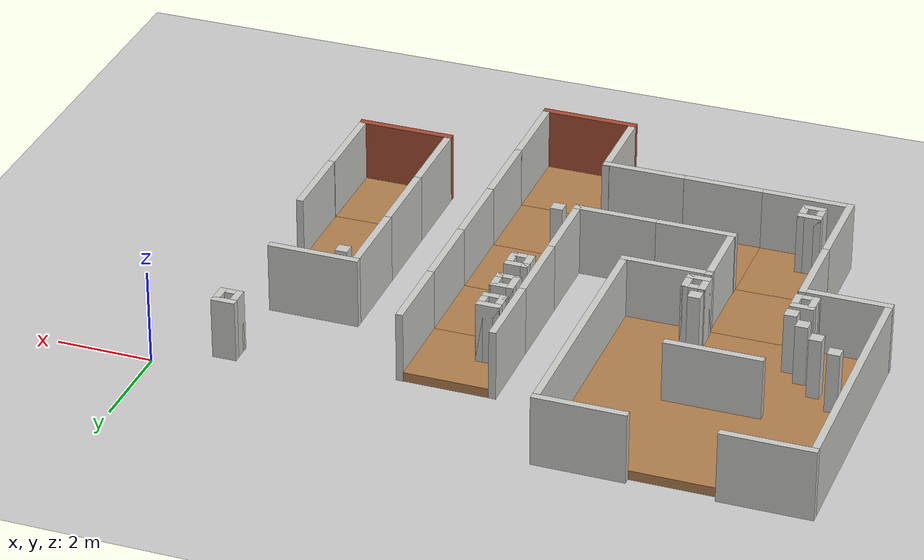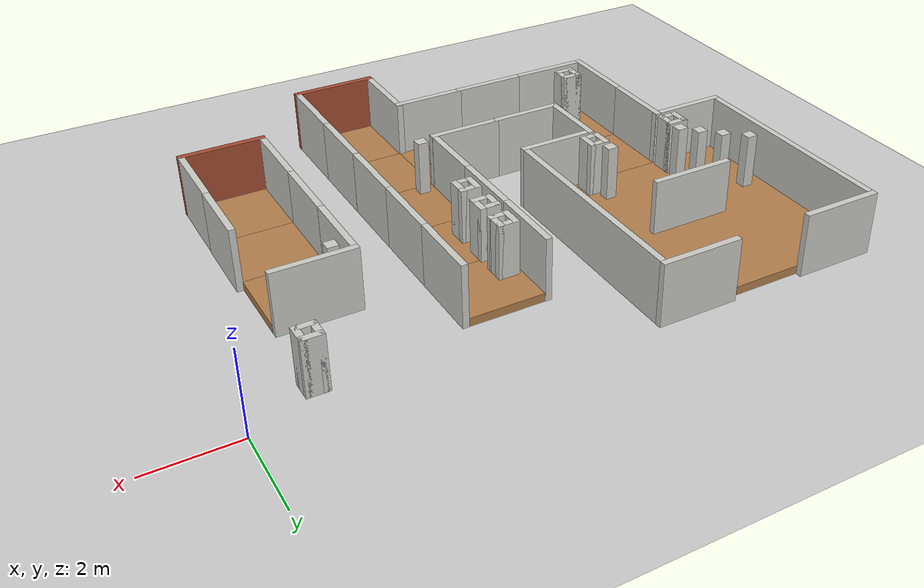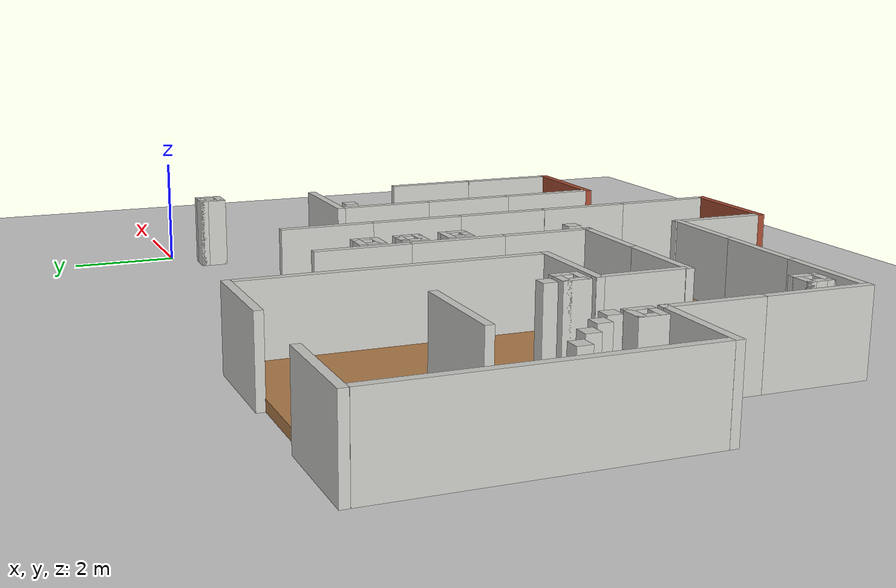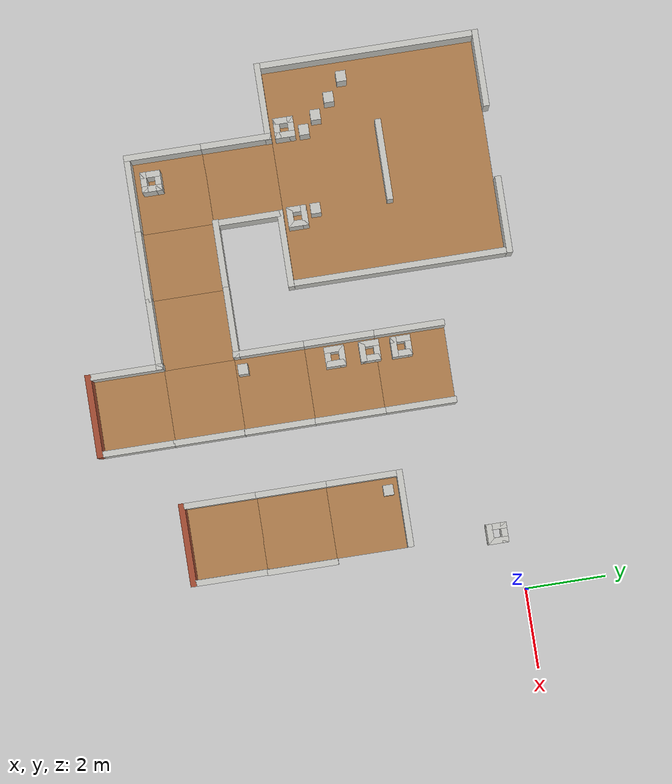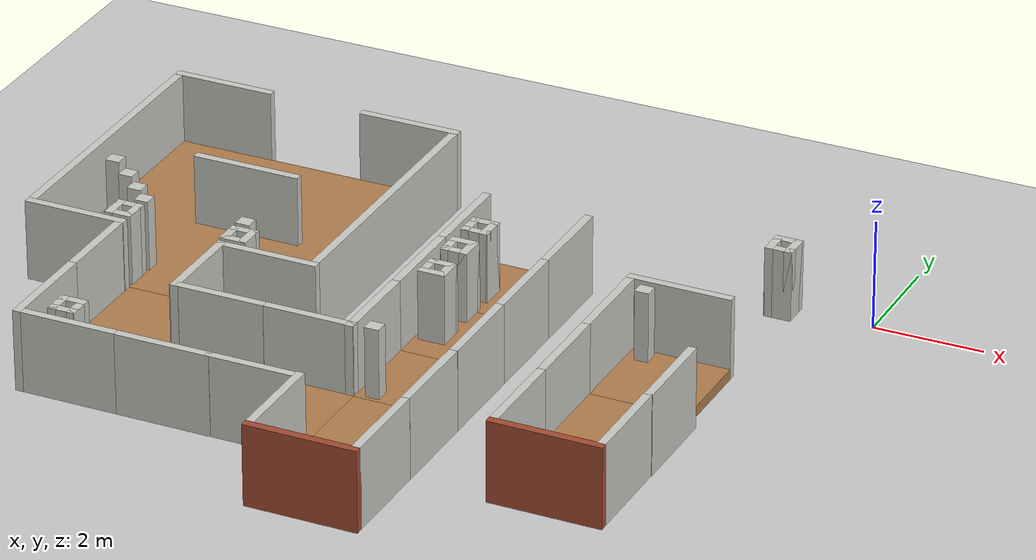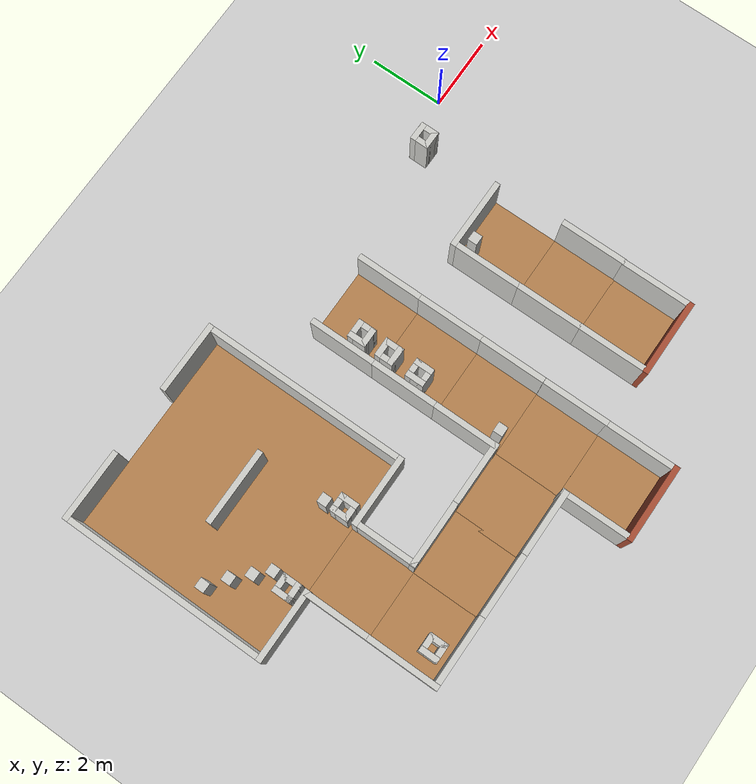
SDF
<sdf version="1.6">
 <world name="default">
  <model name="ground_plane">
   <static>1</static>
   <link name="link">
    <collision name="collision">
     <geometry><plane><normal>0 0 1</normal><size>100 100</size></plane></geometry>
     <surface><friction><ode><mu>100</mu><mu2>50</mu2></ode></friction></surface>
    </collision>
    <visual name="visual">
     <cast_shadows>0</cast_shadows>
     <geometry><plane><normal>0 0 1</normal><size>100 100</size></plane></geometry>
     <material>
      <script><uri>file://media/materials/scripts/gazebo.material</uri><name>Gazebo/Grey</name></script>
     </material>
    </visual>
   </link>
  </model>
  <model name="nerve_end">
   <pose>-2.33142 -7.13266 0 0 0 -3.14159</pose>
   <link name="Wall_0">
    <collision name="Wall_0_Collision">
     <geometry><box><size>1.76 1.75 0.2</size></box></geometry>
     <pose>0 0 0.1 0 -0 0</pose>
    </collision>
    <visual name="Wall_0_Visual">
     <pose>0 0 0.1 0 -0 0</pose>
     <geometry><box><size>1.76 1.75 0.2</size></box></geometry>
     <material>
      <script><uri>file://media/materials/scripts/gazebo.material</uri><name>Gazebo/Wood</name></script>
      <ambient>1 0.764706 0.305882 1</ambient>
     </material>
    </visual>
    <pose>-0.009 -0.064 0 0 -0 0</pose>
   </link>
   <link name="Wall_2">
    <collision name="Wall_2_Collision">
     <geometry><box><size>1.8 0.15 1.5</size></box></geometry>
     <pose>0 0 0.75 0 -0 0</pose>
    </collision>
    <visual name="Wall_2_Visual">
     <pose>0 0 0.75 0 -0 0</pose>
     <geometry><box><size>1.8 0.15 1.5</size></box></geometry>
     <material>
      <script><uri>file://media/materials/scripts/gazebo.material</uri><name>Gazebo/CeilingTiled</name></script>
      <ambient>1 0.764706 0.305882 1</ambient>
     </material>
    </visual>
    <pose>-0.95 -0.065 0 0 0 -1.5708</pose>
   </link>
   <link name="Wall_4">
    <collision name="Wall_4_Collision">
     <geometry><box><size>1.8 0.15 1.5</size></box></geometry>
     <pose>0 0 0.75 0 -0 0</pose>
    </collision>
    <visual name="Wall_4_Visual">
     <pose>0 0 0.75 0 -0 0</pose>
     <geometry><box><size>1.8 0.15 1.5</size></box></geometry>
     <material>
      <script><uri>file://media/materials/scripts/gazebo.material</uri><name>Gazebo/CeilingTiled</name></script>
      <ambient>1 0.764706 0.305882 1</ambient>
     </material>
    </visual>
    <pose>0.95 -0.065 0 0 0 -1.5708</pose>
   </link>
   <link name="Wall_6">
    <collision name="Wall_6_Collision">
     <geometry><box><size>2.05 0.15 1.5</size></box></geometry>
     <pose>0 0 0.75 0 -0 0</pose>
    </collision>
    <visual name="Wall_6_Visual">
     <pose>0 0 0.75 0 -0 0</pose>
     <geometry><box><size>2.05 0.15 1.5</size></box></geometry>
     <material>
      <script><uri>file://media/materials/scripts/gazebo.material</uri><name>Gazebo/Bricks</name></script>
      <ambient>0.996078 0.47451 0.0196078 1</ambient>
     </material>
    </visual>
    <pose>0 0.89 0 0 -0 0</pose>
   </link>
   <static>1</static>
  </model>
  <model name="nerve_straight_4">
   <pose>-2.32642 -5.32807 0 0 -0 0</pose>
   <link name="Wall_0">
    <collision name="Wall_0_Collision">
     <geometry><box><size>1.76 1.75 0.2</size></box></geometry>
     <pose>0 0 0.1 0 -0 0</pose>
    </collision>
    <visual name="Wall_0_Visual">
     <pose>0 0 0.1 0 -0 0</pose>
     <geometry><box><size>1.76 1.75 0.2</size></box></geometry>
     <material>
      <script><uri>file://media/materials/scripts/gazebo.material</uri><name>Gazebo/Wood</name></script>
      <ambient>1 0.764706 0.305882 1</ambient>
     </material>
    </visual>
    <pose>0.005 -0.002 0 0 -0 3.14159</pose>
   </link>
   <link name="Wall_2">
    <collision name="Wall_2_Collision">
     <geometry><box><size>1.75 0.15 1.5</size></box></geometry>
     <pose>0 0 0.75 0 -0 0</pose>
    </collision>
    <visual name="Wall_2_Visual">
     <pose>0 0 0.75 0 -0 0</pose>
     <geometry><box><size>1.75 0.15 1.5</size></box></geometry>
     <material>
      <script><uri>file://media/materials/scripts/gazebo.material</uri><name>Gazebo/CeilingTiled</name></script>
      <ambient>1 0.764706 0.305882 1</ambient>
     </material>
    </visual>
    <pose>-0.955 0.002 0 0 0 -1.5708</pose>
   </link>
   <link name="Wall_4">
    <collision name="Wall_4_Collision">
     <geometry><box><size>1.75 0.15 1.5</size></box></geometry>
     <pose>0 0 0.75 0 -0 0</pose>
    </collision>
    <visual name="Wall_4_Visual">
     <pose>0 0 0.75 0 -0 0</pose>
     <geometry><box><size>1.75 0.15 1.5</size></box></geometry>
     <material>
      <script><uri>file://media/materials/scripts/gazebo.material</uri><name>Gazebo/CeilingTiled</name></script>
      <ambient>1 0.764706 0.305882 1</ambient>
     </material>
    </visual>
    <pose>0.955 0.002 0 0 0 -1.5708</pose>
   </link>
   <static>1</static>
  </model>
  <model name="nerve_corner_4">
   <pose>-2.40033 -3.51919 0 0 -0 0</pose>
   <link name="Wall_0">
    <collision name="Wall_0_Collision">
     <geometry><box><size>1.76 1.75 0.2</size></box></geometry>
     <pose>0 0 0.1 0 -0 0</pose>
    </collision>
    <visual name="Wall_0_Visual">
     <pose>0 0 0.1 0 -0 0</pose>
     <geometry><box><size>1.76 1.75 0.2</size></box></geometry>
     <material>
      <script><uri>file://media/materials/scripts/gazebo.material</uri><name>Gazebo/Wood</name></script>
      <ambient>1 0.764706 0.305882 1</ambient>
     </material>
    </visual>
    <pose>0.077507 -0.077007 0 0 -0 3.14159</pose>
   </link>
   <link name="Wall_2">
    <collision name="Wall_2_Collision">
     <geometry><box><size>1.75 0.15 1.5</size></box></geometry>
     <pose>0 0 0.75 0 -0 0</pose>
    </collision>
    <visual name="Wall_2_Visual">
     <pose>0 0 0.75 0 -0 0</pose>
     <geometry><box><size>1.75 0.15 1.5</size></box></geometry>
     <material>
      <script><uri>file://media/materials/scripts/gazebo.material</uri><name>Gazebo/CeilingTiled</name></script>
      <ambient>1 0.764706 0.305882 1</ambient>
     </material>
    </visual>
    <pose>-0.882493 -0.073007 0 0 0 -1.5708</pose>
   </link>
   <link name="Wall_4">
    <collision name="Wall_4_Collision">
     <geometry><box><size>1.91042 0.15 1.5</size></box></geometry>
     <pose>0 0 0.75 0 -0 0</pose>
    </collision>
    <visual name="Wall_4_Visual">
     <pose>0 0 0.75 0 -0 0</pose>
     <geometry><box><size>1.91042 0.15 1.5</size></box></geometry>
     <material>
      <script><uri>file://media/materials/scripts/gazebo.material</uri><name>Gazebo/CeilingTiled</name></script>
      <ambient>1 0.764706 0.305882 1</ambient>
     </material>
    </visual>
    <pose>-0.002284 0.876825 0 0 -0 3.1414</pose>
   </link>
   <static>1</static>
  </model>
  <model name="nerve_straight_10_clone">
   <pose>-5.79649 -1.8585 0 0 -0 0</pose>
   <link name="Wall_0">
    <collision name="Wall_0_Collision">
     <geometry><box><size>1.76 1.75 0.2</size></box></geometry>
     <pose>0 0 0.1 0 -0 0</pose>
    </collision>
    <visual name="Wall_0_Visual">
     <pose>0 0 0.1 0 -0 0</pose>
     <geometry><box><size>1.76 1.75 0.2</size></box></geometry>
     <material>
      <script><uri>file://media/materials/scripts/gazebo.material</uri><name>Gazebo/Wood</name></script>
      <ambient>1 0.764706 0.305882 1</ambient>
     </material>
    </visual>
    <pose>0.005 -0.002 0 0 -0 3.14159</pose>
   </link>
   <link name="Wall_2">
    <collision name="Wall_2_Collision">
     <geometry><box><size>1.75 0.15 1.5</size></box></geometry>
     <pose>0 0 0.75 0 -0 0</pose>
    </collision>
    <visual name="Wall_2_Visual">
     <pose>0 0 0.75 0 -0 0</pose>
     <geometry><box><size>1.75 0.15 1.5</size></box></geometry>
     <material>
      <script><uri>file://media/materials/scripts/gazebo.material</uri><name>Gazebo/CeilingTiled</name></script>
      <ambient>1 0.764706 0.305882 1</ambient>
     </material>
    </visual>
    <pose>-0.955 0.002 0 0 0 -1.5708</pose>
   </link>
   <link name="Wall_4">
    <collision name="Wall_4_Collision">
     <geometry><box><size>1.75 0.15 1.5</size></box></geometry>
     <pose>0 0 0.75 0 -0 0</pose>
    </collision>
    <visual name="Wall_4_Visual">
     <pose>0 0 0.75 0 -0 0</pose>
     <geometry><box><size>1.75 0.15 1.5</size></box></geometry>
     <material>
      <script><uri>file://media/materials/scripts/gazebo.material</uri><name>Gazebo/CeilingTiled</name></script>
      <ambient>1 0.764706 0.305882 1</ambient>
     </material>
    </visual>
    <pose>0.955 0.002 0 0 0 -1.5708</pose>
   </link>
   <static>1</static>
  </model>
  <model name="nerve_straight_10_clone_0">
   <pose>-5.79649 -3.60725 0 0 -0 0</pose>
   <link name="Wall_0">
    <collision name="Wall_0_Collision">
     <geometry><box><size>1.76 1.75 0.2</size></box></geometry>
     <pose>0 0 0.1 0 -0 0</pose>
    </collision>
    <visual name="Wall_0_Visual">
     <pose>0 0 0.1 0 -0 0</pose>
     <geometry><box><size>1.76 1.75 0.2</size></box></geometry>
     <material>
      <script><uri>file://media/materials/scripts/gazebo.material</uri><name>Gazebo/Wood</name></script>
      <ambient>1 0.764706 0.305882 1</ambient>
     </material>
    </visual>
    <pose>0.005 -0.002 0 0 -0 3.14159</pose>
   </link>
   <link name="Wall_2">
    <collision name="Wall_2_Collision">
     <geometry><box><size>1.75 0.15 1.5</size></box></geometry>
     <pose>0 0 0.75 0 -0 0</pose>
    </collision>
    <visual name="Wall_2_Visual">
     <pose>0 0 0.75 0 -0 0</pose>
     <geometry><box><size>1.75 0.15 1.5</size></box></geometry>
     <material>
      <script><uri>file://media/materials/scripts/gazebo.material</uri><name>Gazebo/CeilingTiled</name></script>
      <ambient>1 0.764706 0.305882 1</ambient>
     </material>
    </visual>
    <pose>-0.955 0.002 0 0 0 -1.5708</pose>
   </link>
   <link name="Wall_4">
    <collision name="Wall_4_Collision">
     <geometry><box><size>1.75 0.15 1.5</size></box></geometry>
     <pose>0 0 0.75 0 -0 0</pose>
    </collision>
    <visual name="Wall_4_Visual">
     <pose>0 0 0.75 0 -0 0</pose>
     <geometry><box><size>1.75 0.15 1.5</size></box></geometry>
     <material>
      <script><uri>file://media/materials/scripts/gazebo.material</uri><name>Gazebo/CeilingTiled</name></script>
      <ambient>1 0.764706 0.305882 1</ambient>
     </material>
    </visual>
    <pose>0.955 0.002 0 0 0 -1.5708</pose>
   </link>
   <static>1</static>
  </model>
  <model name="nerve_straight_10_clone_1">
   <pose>-5.79649 -5.34509 0 0 -0 0</pose>
   <link name="Wall_0">
    <collision name="Wall_0_Collision">
     <geometry><box><size>1.76 1.75 0.2</size></box></geometry>
     <pose>0 0 0.1 0 -0 0</pose>
    </collision>
    <visual name="Wall_0_Visual">
     <pose>0 0 0.1 0 -0 0</pose>
     <geometry><box><size>1.76 1.75 0.2</size></box></geometry>
     <material>
      <script><uri>file://media/materials/scripts/gazebo.material</uri><name>Gazebo/Wood</name></script>
      <ambient>1 0.764706 0.305882 1</ambient>
     </material>
    </visual>
    <pose>0.005 -0.002 0 0 -0 3.14159</pose>
   </link>
   <link name="Wall_2">
    <collision name="Wall_2_Collision">
     <geometry><box><size>1.75 0.15 1.5</size></box></geometry>
     <pose>0 0 0.75 0 -0 0</pose>
    </collision>
    <visual name="Wall_2_Visual">
     <pose>0 0 0.75 0 -0 0</pose>
     <geometry><box><size>1.75 0.15 1.5</size></box></geometry>
     <material>
      <script><uri>file://media/materials/scripts/gazebo.material</uri><name>Gazebo/CeilingTiled</name></script>
      <ambient>1 0.764706 0.305882 1</ambient>
     </material>
    </visual>
    <pose>-0.955 0.002 0 0 0 -1.5708</pose>
   </link>
   <link name="Wall_4">
    <collision name="Wall_4_Collision">
     <geometry><box><size>1.75 0.15 1.5</size></box></geometry>
     <pose>0 0 0.75 0 -0 0</pose>
    </collision>
    <visual name="Wall_4_Visual">
     <pose>0 0 0.75 0 -0 0</pose>
     <geometry><box><size>1.75 0.15 1.5</size></box></geometry>
     <material>
      <script><uri>file://media/materials/scripts/gazebo.material</uri><name>Gazebo/CeilingTiled</name></script>
      <ambient>1 0.764706 0.305882 1</ambient>
     </material>
    </visual>
    <pose>0.955 0.002 0 0 0 -1.5708</pose>
   </link>
   <static>1</static>
  </model>
  <model name="nerve_corner_11">
   <pose>-11.0361 -7.16168 0 0 -0 1.57079</pose>
   <link name="Wall_0">
    <collision name="Wall_0_Collision">
     <geometry><box><size>1.76 1.75 0.2</size></box></geometry>
     <pose>0 0 0.1 0 -0 0</pose>
    </collision>
    <visual name="Wall_0_Visual">
     <pose>0 0 0.1 0 -0 0</pose>
     <geometry><box><size>1.76 1.75 0.2</size></box></geometry>
     <material>
      <script><uri>file://media/materials/scripts/gazebo.material</uri><name>Gazebo/Wood</name></script>
      <ambient>1 0.764706 0.305882 1</ambient>
     </material>
    </visual>
    <pose>0.077507 -0.077007 0 0 -0 3.14159</pose>
   </link>
   <link name="Wall_2">
    <collision name="Wall_2_Collision">
     <geometry><box><size>1.75 0.15 1.5</size></box></geometry>
     <pose>0 0 0.75 0 -0 0</pose>
    </collision>
    <visual name="Wall_2_Visual">
     <pose>0 0 0.75 0 -0 0</pose>
     <geometry><box><size>1.75 0.15 1.5</size></box></geometry>
     <material>
      <script><uri>file://media/materials/scripts/gazebo.material</uri><name>Gazebo/CeilingTiled</name></script>
      <ambient>1 0.764706 0.305882 1</ambient>
     </material>
    </visual>
    <pose>-0.882493 -0.073007 0 0 0 -1.5708</pose>
   </link>
   <link name="Wall_4">
    <collision name="Wall_4_Collision">
     <geometry><box><size>1.91042 0.15 1.5</size></box></geometry>
     <pose>0 0 0.75 0 -0 0</pose>
    </collision>
    <visual name="Wall_4_Visual">
     <pose>0 0 0.75 0 -0 0</pose>
     <geometry><box><size>1.91042 0.15 1.5</size></box></geometry>
     <material>
      <script><uri>file://media/materials/scripts/gazebo.material</uri><name>Gazebo/CeilingTiled</name></script>
      <ambient>1 0.764706 0.305882 1</ambient>
     </material>
    </visual>
    <pose>-0.002284 0.876825 0 0 -0 3.1414</pose>
   </link>
   <static>1</static>
  </model>
  <model name="nerve_straight_10_clone_1_clone">
   <pose>-10.9569 -5.3391 0 0 -0 0</pose>
   <link name="Wall_0">
    <collision name="Wall_0_Collision">
     <geometry><box><size>1.76 1.75 0.2</size></box></geometry>
     <pose>0 0 0.1 0 -0 0</pose>
    </collision>
    <visual name="Wall_0_Visual">
     <pose>0 0 0.1 0 -0 0</pose>
     <geometry><box><size>1.76 1.75 0.2</size></box></geometry>
     <material>
      <script><uri>file://media/materials/scripts/gazebo.material</uri><name>Gazebo/Wood</name></script>
      <ambient>1 0.764706 0.305882 1</ambient>
     </material>
    </visual>
    <pose>0.005 -0.002 0 0 -0 3.14159</pose>
   </link>
   <link name="Wall_2">
    <collision name="Wall_2_Collision">
     <geometry><box><size>1.75 0.15 1.5</size></box></geometry>
     <pose>0 0 0.75 0 -0 0</pose>
    </collision>
    <visual name="Wall_2_Visual">
     <pose>0 0 0.75 0 -0 0</pose>
     <geometry><box><size>1.75 0.15 1.5</size></box></geometry>
     <material>
      <script><uri>file://media/materials/scripts/gazebo.material</uri><name>Gazebo/CeilingTiled</name></script>
      <ambient>1 0.764706 0.305882 1</ambient>
     </material>
    </visual>
    <pose>-0.955 0.002 0 0 0 -1.5708</pose>
   </link>
   <link name="Wall_4">
    <collision name="Wall_4_Collision">
     <geometry><box><size>1.75 0.15 1.5</size></box></geometry>
     <pose>0 0 0.75 0 -0 0</pose>
    </collision>
    <visual name="Wall_4_Visual">
     <pose>0 0 0.75 0 -0 0</pose>
     <geometry><box><size>1.75 0.15 1.5</size></box></geometry>
     <material>
      <script><uri>file://media/materials/scripts/gazebo.material</uri><name>Gazebo/CeilingTiled</name></script>
      <ambient>1 0.764706 0.305882 1</ambient>
     </material>
    </visual>
    <pose>0.955 0.002 0 0 0 -1.5708</pose>
   </link>
   <static>1</static>
  </model>
  <model name="nerve_straight_10_clone_1_clone_0">
   <pose>-7.54894 -7.08598 0 0 0 -1.5708</pose>
   <link name="Wall_0">
    <collision name="Wall_0_Collision">
     <geometry><box><size>1.76 1.75 0.2</size></box></geometry>
     <pose>0 0 0.1 0 -0 0</pose>
    </collision>
    <visual name="Wall_0_Visual">
     <pose>0 0 0.1 0 -0 0</pose>
     <geometry><box><size>1.76 1.75 0.2</size></box></geometry>
     <material>
      <script><uri>file://media/materials/scripts/gazebo.material</uri><name>Gazebo/Wood</name></script>
      <ambient>1 0.764706 0.305882 1</ambient>
     </material>
    </visual>
    <pose>0.005 -0.002 0 0 -0 3.14159</pose>
   </link>
   <link name="Wall_2">
    <collision name="Wall_2_Collision">
     <geometry><box><size>1.75 0.15 1.5</size></box></geometry>
     <pose>0 0 0.75 0 -0 0</pose>
    </collision>
    <visual name="Wall_2_Visual">
     <pose>0 0 0.75 0 -0 0</pose>
     <geometry><box><size>1.75 0.15 1.5</size></box></geometry>
     <material>
      <script><uri>file://media/materials/scripts/gazebo.material</uri><name>Gazebo/CeilingTiled</name></script>
      <ambient>1 0.764706 0.305882 1</ambient>
     </material>
    </visual>
    <pose>-0.955 0.002 0 0 0 -1.5708</pose>
   </link>
   <link name="Wall_4">
    <collision name="Wall_4_Collision">
     <geometry><box><size>1.75 0.15 1.5</size></box></geometry>
     <pose>0 0 0.75 0 -0 0</pose>
    </collision>
    <visual name="Wall_4_Visual">
     <pose>0 0 0.75 0 -0 0</pose>
     <geometry><box><size>1.75 0.15 1.5</size></box></geometry>
     <material>
      <script><uri>file://media/materials/scripts/gazebo.material</uri><name>Gazebo/CeilingTiled</name></script>
      <ambient>1 0.764706 0.305882 1</ambient>
     </material>
    </visual>
    <pose>0.955 0.002 0 0 0 -1.5708</pose>
   </link>
   <static>1</static>
  </model>
  <model name="nerve_room_3x3_split">
   <pose>-10.9537 -1.84017 0 0 -0 0</pose>
   <link name="Wall_11">
    <collision name="Wall_11_Collision">
     <geometry><box><size>5.25 0.15 1.5</size></box></geometry>
     <pose>0 0 0.75 0 -0 0</pose>
    </collision>
    <visual name="Wall_11_Visual">
     <pose>0 0 0.75 0 -0 0</pose>
     <geometry><box><size>5.25 0.15 1.5</size></box></geometry>
     <material>
      <script><uri>file://media/materials/scripts/gazebo.material</uri><name>Gazebo/CeilingTiled</name></script>
      <ambient>1 0.764706 0.305882 1</ambient>
     </material>
    </visual>
    <pose>-2.69653 -0.003278 0 0 0 -1.5708</pose>
   </link>
   <link name="Wall_13">
    <collision name="Wall_13_Collision">
     <geometry><box><size>5.25 0.15 1.5</size></box></geometry>
     <pose>0 0 0.75 0 -0 0</pose>
    </collision>
    <visual name="Wall_13_Visual">
     <pose>0 0 0.75 0 -0 0</pose>
     <geometry><box><size>5.25 0.15 1.5</size></box></geometry>
     <material>
      <script><uri>file://media/materials/scripts/gazebo.material</uri><name>Gazebo/CeilingTiled</name></script>
      <ambient>1 0.764706 0.305882 1</ambient>
     </material>
    </visual>
    <pose>2.69688 -0.000452 0 0 0 -1.5708</pose>
   </link>
   <link name="Wall_15">
    <collision name="Wall_15_Collision">
     <geometry><box><size>1.9 0.15 1.5</size></box></geometry>
     <pose>0 0 0.75 0 -0 0</pose>
    </collision>
    <visual name="Wall_15_Visual">
     <pose>0 0 0.75 0 -0 0</pose>
     <geometry><box><size>1.9 0.15 1.5</size></box></geometry>
     <material>
      <script><uri>file://media/materials/scripts/gazebo.material</uri><name>Gazebo/CeilingTiled</name></script>
      <ambient>1 0.764706 0.305882 1</ambient>
     </material>
    </visual>
    <pose>-1.82279 -2.70217 0 0 -0 0</pose>
   </link>
   <link name="Wall_17">
    <collision name="Wall_17_Collision">
     <geometry><box><size>1.9 0.15 1.5</size></box></geometry>
     <pose>0 0 0.75 0 -0 0</pose>
    </collision>
    <visual name="Wall_17_Visual">
     <pose>0 0 0.75 0 -0 0</pose>
     <geometry><box><size>1.9 0.15 1.5</size></box></geometry>
     <material>
      <script><uri>file://media/materials/scripts/gazebo.material</uri><name>Gazebo/CeilingTiled</name></script>
      <ambient>1 0.764706 0.305882 1</ambient>
     </material>
    </visual>
    <pose>-1.82219 2.69878 0 0 -0 0</pose>
   </link>
   <link name="Wall_19">
    <collision name="Wall_19_Collision">
     <geometry><box><size>1.9 0.15 1.5</size></box></geometry>
     <pose>0 0 0.75 0 -0 0</pose>
    </collision>
    <visual name="Wall_19_Visual">
     <pose>0 0 0.75 0 -0 0</pose>
     <geometry><box><size>1.9 0.15 1.5</size></box></geometry>
     <material>
      <script><uri>file://media/materials/scripts/gazebo.material</uri><name>Gazebo/CeilingTiled</name></script>
      <ambient>1 0.764706 0.305882 1</ambient>
     </material>
    </visual>
    <pose>1.82194 2.70217 0 0 -0 0</pose>
   </link>
   <link name="Wall_21">
    <collision name="Wall_21_Collision">
     <geometry><box><size>1.9 0.15 1.5</size></box></geometry>
     <pose>0 0 0.75 0 -0 0</pose>
    </collision>
    <visual name="Wall_21_Visual">
     <pose>0 0 0.75 0 -0 0</pose>
     <geometry><box><size>1.9 0.15 1.5</size></box></geometry>
     <material>
      <script><uri>file://media/materials/scripts/gazebo.material</uri><name>Gazebo/CeilingTiled</name></script>
      <ambient>1 0.764706 0.305882 1</ambient>
     </material>
    </visual>
    <pose>1.82279 -2.70173 0 0 -0 0</pose>
   </link>
   <link name="Wall_23">
    <collision name="Wall_23_Collision">
     <geometry><box><size>2 0.15 1.5</size></box></geometry>
     <pose>0 0 0.75 0 -0 0</pose>
    </collision>
    <visual name="Wall_23_Visual">
     <pose>0 0 0.75 0 -0 0</pose>
     <geometry><box><size>2 0.15 1.5</size></box></geometry>
     <material>
      <script><uri>file://media/materials/scripts/gazebo.material</uri><name>Gazebo/CeilingTiled</name></script>
      <ambient>1 0.764706 0.305882 1</ambient>
     </material>
    </visual>
    <pose>0.033144 0.01482 0 0 -0 0</pose>
   </link>
   <link name="Wall_6">
    <collision name="Wall_6_Collision">
     <geometry><box><size>5.26 5.25 0.2</size></box></geometry>
     <pose>0 0 0.1 0 -0 0</pose>
    </collision>
    <visual name="Wall_6_Visual">
     <pose>0 0 0.1 0 -0 0</pose>
     <geometry><box><size>5.26 5.25 0.2</size></box></geometry>
     <material>
      <script><uri>file://media/materials/scripts/gazebo.material</uri><name>Gazebo/Wood</name></script>
      <ambient>1 0.764706 0.305882 1</ambient>
     </material>
    </visual>
    <pose>-0.001194 0.003047 0 0 -0 1.5708</pose>
   </link>
   <static>1</static>
  </model>
  <model name="nerve_straight_10_clone_1_clone_0_clone">
   <pose>-9.21654 -7.08997 0 0 0 -1.5708</pose>
   <link name="Wall_0">
    <collision name="Wall_0_Collision">
     <geometry><box><size>1.76 1.75 0.2</size></box></geometry>
     <pose>0 0 0.1 0 -0 0</pose>
    </collision>
    <visual name="Wall_0_Visual">
     <pose>0 0 0.1 0 -0 0</pose>
     <geometry><box><size>1.76 1.75 0.2</size></box></geometry>
     <material>
      <script><uri>file://media/materials/scripts/gazebo.material</uri><name>Gazebo/Wood</name></script>
      <ambient>1 0.764706 0.305882 1</ambient>
     </material>
    </visual>
    <pose>0.005 -0.002 0 0 -0 3.14159</pose>
   </link>
   <link name="Wall_2">
    <collision name="Wall_2_Collision">
     <geometry><box><size>1.75 0.15 1.5</size></box></geometry>
     <pose>0 0 0.75 0 -0 0</pose>
    </collision>
    <visual name="Wall_2_Visual">
     <pose>0 0 0.75 0 -0 0</pose>
     <geometry><box><size>1.75 0.15 1.5</size></box></geometry>
     <material>
      <script><uri>file://media/materials/scripts/gazebo.material</uri><name>Gazebo/CeilingTiled</name></script>
      <ambient>1 0.764706 0.305882 1</ambient>
     </material>
    </visual>
    <pose>-0.955 0.002 0 0 0 -1.5708</pose>
   </link>
   <link name="Wall_4">
    <collision name="Wall_4_Collision">
     <geometry><box><size>1.75 0.15 1.5</size></box></geometry>
     <pose>0 0 0.75 0 -0 0</pose>
    </collision>
    <visual name="Wall_4_Visual">
     <pose>0 0 0.75 0 -0 0</pose>
     <geometry><box><size>1.75 0.15 1.5</size></box></geometry>
     <material>
      <script><uri>file://media/materials/scripts/gazebo.material</uri><name>Gazebo/CeilingTiled</name></script>
      <ambient>1 0.764706 0.305882 1</ambient>
     </material>
    </visual>
    <pose>0.955 0.002 0 0 0 -1.5708</pose>
   </link>
   <static>1</static>
  </model>
  <model name="nerve_end_1_clone">
   <pose>-5.79212 -8.90748 0 0 0 -3.14159</pose>
   <link name="Wall_0">
    <collision name="Wall_0_Collision">
     <geometry><box><size>1.76 1.75 0.2</size></box></geometry>
     <pose>0 0 0.1 0 -0 0</pose>
    </collision>
    <visual name="Wall_0_Visual">
     <pose>0 0 0.1 0 -0 0</pose>
     <geometry><box><size>1.76 1.75 0.2</size></box></geometry>
     <material>
      <script><uri>file://media/materials/scripts/gazebo.material</uri><name>Gazebo/Wood</name></script>
      <ambient>1 0.764706 0.305882 1</ambient>
     </material>
    </visual>
    <pose>-0.009 -0.064 0 0 -0 0</pose>
   </link>
   <link name="Wall_2">
    <collision name="Wall_2_Collision">
     <geometry><box><size>1.8 0.15 1.5</size></box></geometry>
     <pose>0 0 0.75 0 -0 0</pose>
    </collision>
    <visual name="Wall_2_Visual">
     <pose>0 0 0.75 0 -0 0</pose>
     <geometry><box><size>1.8 0.15 1.5</size></box></geometry>
     <material>
      <script><uri>file://media/materials/scripts/gazebo.material</uri><name>Gazebo/CeilingTiled</name></script>
      <ambient>1 0.764706 0.305882 1</ambient>
     </material>
    </visual>
    <pose>-0.95 -0.065 0 0 0 -1.5708</pose>
   </link>
   <link name="Wall_4">
    <collision name="Wall_4_Collision">
     <geometry><box><size>1.8 0.15 1.5</size></box></geometry>
     <pose>0 0 0.75 0 -0 0</pose>
    </collision>
    <visual name="Wall_4_Visual">
     <pose>0 0 0.75 0 -0 0</pose>
     <geometry><box><size>1.8 0.15 1.5</size></box></geometry>
     <material>
      <script><uri>file://media/materials/scripts/gazebo.material</uri><name>Gazebo/CeilingTiled</name></script>
      <ambient>1 0.764706 0.305882 1</ambient>
     </material>
    </visual>
    <pose>0.95 -0.065 0 0 0 -1.5708</pose>
   </link>
   <link name="Wall_6">
    <collision name="Wall_6_Collision">
     <geometry><box><size>2.05 0.15 1.5</size></box></geometry>
     <pose>0 0 0.75 0 -0 0</pose>
    </collision>
    <visual name="Wall_6_Visual">
     <pose>0 0 0.75 0 -0 0</pose>
     <geometry><box><size>2.05 0.15 1.5</size></box></geometry>
     <material>
      <script><uri>file://media/materials/scripts/gazebo.material</uri><name>Gazebo/Bricks</name></script>
      <ambient>0.996078 0.47451 0.0196078 1</ambient>
     </material>
    </visual>
    <pose>0 0.89 0 0 -0 0</pose>
   </link>
   <static>1</static>
  </model>
  <model name="nerve_onewall_1_clone_0">
   <pose>-5.72359 -7.09537 0 0 0 -3.14159</pose>
   <link name="Wall_0">
    <collision name="Wall_0_Collision">
     <geometry><box><size>1.76 1.75 0.2</size></box></geometry>
     <pose>0 0 0.1 0 -0 0</pose>
    </collision>
    <visual name="Wall_0_Visual">
     <pose>0 0 0.1 0 -0 0</pose>
     <geometry><box><size>1.76 1.75 0.2</size></box></geometry>
     <material>
      <script><uri>file://media/materials/scripts/gazebo.material</uri><name>Gazebo/Wood</name></script>
      <ambient>1 0.764706 0.305882 1</ambient>
     </material>
    </visual>
    <pose>0.0775 -0.002 0 0 -0 3.14159</pose>
   </link>
   <link name="Wall_2">
    <collision name="Wall_2_Collision">
     <geometry><box><size>1.75 0.15 1.5</size></box></geometry>
     <pose>0 0 0.75 0 -0 0</pose>
    </collision>
    <visual name="Wall_2_Visual">
     <pose>0 0 0.75 0 -0 0</pose>
     <geometry><box><size>1.75 0.15 1.5</size></box></geometry>
     <material>
      <script><uri>file://media/materials/scripts/gazebo.material</uri><name>Gazebo/CeilingTiled</name></script>
      <ambient>1 0.764706 0.305882 1</ambient>
     </material>
    </visual>
    <pose>-0.8825 0.002 0 0 0 -1.5708</pose>
   </link>
   <static>1</static>
  </model>
  <model name="nerve_obs_squarepillar_large_clone">
   <pose>-1.44891 -0.513385 0.2 0 -0 0</pose>
   <link name="Wall_31">
    <collision name="Wall_31_Collision">
     <geometry><box><size>0.5 0.15 1.3</size></box></geometry>
     <pose>0 0 0.65 0 -0 0</pose>
    </collision>
    <visual name="Wall_31_Visual">
     <pose>0 0 0.65 0 -0 0</pose>
     <geometry><box><size>0.5 0.15 1.3</size></box></geometry>
     <material>
      <script><uri>file://media/materials/scripts/gazebo.material</uri><name>Gazebo/CeilingTiled</name></script>
      <ambient>1 0.764706 0.305882 1</ambient>
     </material>
    </visual>
    <pose>-0.175 0 0 0 0 -1.5708</pose>
   </link>
   <link name="Wall_32">
    <collision name="Wall_32_Collision">
     <geometry><box><size>0.5 0.15 1.3</size></box></geometry>
     <pose>0 0 0.65 0 -0 0</pose>
    </collision>
    <visual name="Wall_32_Visual">
     <pose>0 0 0.65 0 -0 0</pose>
     <geometry><box><size>0.5 0.15 1.3</size></box></geometry>
     <material>
      <script><uri>file://media/materials/scripts/gazebo.material</uri><name>Gazebo/CeilingTiled</name></script>
      <ambient>1 0.764706 0.305882 1</ambient>
     </material>
    </visual>
    <pose>0 -0.175 0 0 -0 0</pose>
   </link>
   <link name="Wall_33">
    <collision name="Wall_33_Collision">
     <geometry><box><size>0.5 0.15 1.3</size></box></geometry>
     <pose>0 0 0.65 0 -0 0</pose>
    </collision>
    <visual name="Wall_33_Visual">
     <pose>0 0 0.65 0 -0 0</pose>
     <geometry><box><size>0.5 0.15 1.3</size></box></geometry>
     <material>
      <script><uri>file://media/materials/scripts/gazebo.material</uri><name>Gazebo/CeilingTiled</name></script>
      <ambient>1 0.764706 0.305882 1</ambient>
     </material>
    </visual>
    <pose>0.175 0 0 0 -0 1.5708</pose>
   </link>
   <link name="Wall_34">
    <collision name="Wall_34_Collision">
     <geometry><box><size>0.5 0.15 1.3</size></box></geometry>
     <pose>0 0 0.65 0 -0 0</pose>
    </collision>
    <visual name="Wall_34_Visual">
     <pose>0 0 0.65 0 -0 0</pose>
     <geometry><box><size>0.5 0.15 1.3</size></box></geometry>
     <material>
      <script><uri>file://media/materials/scripts/gazebo.material</uri><name>Gazebo/CeilingTiled</name></script>
      <ambient>1 0.764706 0.305882 1</ambient>
     </material>
    </visual>
    <pose>0 0.175 0 0 -0 3.14159</pose>
   </link>
   <static>1</static>
  </model>
  <model name="nerve_obs_squarepillar_small_clone_0_clone_1_clone_3_clone">
   <pose>-13.1006 -2.55078 0.2 0 -0 0</pose>
   <link name="Wall_40">
    <collision name="Wall_40_Collision">
     <geometry><box><size>0.26 0.25 1.3</size></box></geometry>
     <pose>0 0 0.65 0 -0 0</pose>
    </collision>
    <visual name="Wall_40_Visual">
     <pose>0 0 0.65 0 -0 0</pose>
     <geometry><box><size>0.26 0.25 1.3</size></box></geometry>
     <material>
      <script><uri>file://media/materials/scripts/gazebo.material</uri><name>Gazebo/CeilingTiled</name></script>
      <ambient>1 0.764706 0.305882 1</ambient>
     </material>
    </visual>
   </link>
   <static>1</static>
  </model>
  <model name="nerve_obs_squarepillar_small_clone_0_clone_1_clone_3_clone_0">
   <pose>-12.6373 -2.93227 0.2 0 -0 0</pose>
   <link name="Wall_40">
    <collision name="Wall_40_Collision">
     <geometry><box><size>0.26 0.25 1.3</size></box></geometry>
     <pose>0 0 0.65 0 -0 0</pose>
    </collision>
    <visual name="Wall_40_Visual">
     <pose>0 0 0.65 0 -0 0</pose>
     <geometry><box><size>0.26 0.25 1.3</size></box></geometry>
     <material>
      <script><uri>file://media/materials/scripts/gazebo.material</uri><name>Gazebo/CeilingTiled</name></script>
      <ambient>1 0.764706 0.305882 1</ambient>
     </material>
    </visual>
   </link>
   <static>1</static>
  </model>
  <model name="nerve_obs_squarepillar_small_clone_0_clone_1_clone_3_clone_1">
   <pose>-12.2594 -3.31718 0.2 0 -0 0</pose>
   <link name="Wall_40">
    <collision name="Wall_40_Collision">
     <geometry><box><size>0.26 0.25 1.3</size></box></geometry>
     <pose>0 0 0.65 0 -0 0</pose>
    </collision>
    <visual name="Wall_40_Visual">
     <pose>0 0 0.65 0 -0 0</pose>
     <geometry><box><size>0.26 0.25 1.3</size></box></geometry>
     <material>
      <script><uri>file://media/materials/scripts/gazebo.material</uri><name>Gazebo/CeilingTiled</name></script>
      <ambient>1 0.764706 0.305882 1</ambient>
     </material>
    </visual>
   </link>
   <static>1</static>
  </model>
  <model name="nerve_obs_squarepillar_large_clone_0_clone">
   <pose>-12.0682 -4.12205 0.2 0 -0 0</pose>
   <link name="Wall_31">
    <collision name="Wall_31_Collision">
     <geometry><box><size>0.5 0.15 1.3</size></box></geometry>
     <pose>0 0 0.65 0 -0 0</pose>
    </collision>
    <visual name="Wall_31_Visual">
     <pose>0 0 0.65 0 -0 0</pose>
     <geometry><box><size>0.5 0.15 1.3</size></box></geometry>
     <material>
      <script><uri>file://media/materials/scripts/gazebo.material</uri><name>Gazebo/CeilingTiled</name></script>
      <ambient>1 0.764706 0.305882 1</ambient>
     </material>
    </visual>
    <pose>-0.175 0 0 0 0 -1.5708</pose>
   </link>
   <link name="Wall_32">
    <collision name="Wall_32_Collision">
     <geometry><box><size>0.5 0.15 1.3</size></box></geometry>
     <pose>0 0 0.65 0 -0 0</pose>
    </collision>
    <visual name="Wall_32_Visual">
     <pose>0 0 0.65 0 -0 0</pose>
     <geometry><box><size>0.5 0.15 1.3</size></box></geometry>
     <material>
      <script><uri>file://media/materials/scripts/gazebo.material</uri><name>Gazebo/CeilingTiled</name></script>
      <ambient>1 0.764706 0.305882 1</ambient>
     </material>
    </visual>
    <pose>0 -0.175 0 0 -0 0</pose>
   </link>
   <link name="Wall_33">
    <collision name="Wall_33_Collision">
     <geometry><box><size>0.5 0.15 1.3</size></box></geometry>
     <pose>0 0 0.65 0 -0 0</pose>
    </collision>
    <visual name="Wall_33_Visual">
     <pose>0 0 0.65 0 -0 0</pose>
     <geometry><box><size>0.5 0.15 1.3</size></box></geometry>
     <material>
      <script><uri>file://media/materials/scripts/gazebo.material</uri><name>Gazebo/CeilingTiled</name></script>
      <ambient>1 0.764706 0.305882 1</ambient>
     </material>
    </visual>
    <pose>0.175 0 0 0 -0 1.5708</pose>
   </link>
   <link name="Wall_34">
    <collision name="Wall_34_Collision">
     <geometry><box><size>0.5 0.15 1.3</size></box></geometry>
     <pose>0 0 0.65 0 -0 0</pose>
    </collision>
    <visual name="Wall_34_Visual">
     <pose>0 0 0.65 0 -0 0</pose>
     <geometry><box><size>0.5 0.15 1.3</size></box></geometry>
     <material>
      <script><uri>file://media/materials/scripts/gazebo.material</uri><name>Gazebo/CeilingTiled</name></script>
      <ambient>1 0.764706 0.305882 1</ambient>
     </material>
    </visual>
    <pose>0 0.175 0 0 -0 3.14159</pose>
   </link>
   <static>1</static>
  </model>
  <model name="nerve_obs_squarepillar_large_clone_0_clone_0">
   <pose>-9.869 -4.13014 0.2 0 -0 0</pose>
   <link name="Wall_31">
    <collision name="Wall_31_Collision">
     <geometry><box><size>0.5 0.15 1.3</size></box></geometry>
     <pose>0 0 0.65 0 -0 0</pose>
    </collision>
    <visual name="Wall_31_Visual">
     <pose>0 0 0.65 0 -0 0</pose>
     <geometry><box><size>0.5 0.15 1.3</size></box></geometry>
     <material>
      <script><uri>file://media/materials/scripts/gazebo.material</uri><name>Gazebo/CeilingTiled</name></script>
      <ambient>1 0.764706 0.305882 1</ambient>
     </material>
    </visual>
    <pose>-0.175 0 0 0 0 -1.5708</pose>
   </link>
   <link name="Wall_32">
    <collision name="Wall_32_Collision">
     <geometry><box><size>0.5 0.15 1.3</size></box></geometry>
     <pose>0 0 0.65 0 -0 0</pose>
    </collision>
    <visual name="Wall_32_Visual">
     <pose>0 0 0.65 0 -0 0</pose>
     <geometry><box><size>0.5 0.15 1.3</size></box></geometry>
     <material>
      <script><uri>file://media/materials/scripts/gazebo.material</uri><name>Gazebo/CeilingTiled</name></script>
      <ambient>1 0.764706 0.305882 1</ambient>
     </material>
    </visual>
    <pose>0 -0.175 0 0 -0 0</pose>
   </link>
   <link name="Wall_33">
    <collision name="Wall_33_Collision">
     <geometry><box><size>0.5 0.15 1.3</size></box></geometry>
     <pose>0 0 0.65 0 -0 0</pose>
    </collision>
    <visual name="Wall_33_Visual">
     <pose>0 0 0.65 0 -0 0</pose>
     <geometry><box><size>0.5 0.15 1.3</size></box></geometry>
     <material>
      <script><uri>file://media/materials/scripts/gazebo.material</uri><name>Gazebo/CeilingTiled</name></script>
      <ambient>1 0.764706 0.305882 1</ambient>
     </material>
    </visual>
    <pose>0.175 0 0 0 -0 1.5708</pose>
   </link>
   <link name="Wall_34">
    <collision name="Wall_34_Collision">
     <geometry><box><size>0.5 0.15 1.3</size></box></geometry>
     <pose>0 0 0.65 0 -0 0</pose>
    </collision>
    <visual name="Wall_34_Visual">
     <pose>0 0 0.65 0 -0 0</pose>
     <geometry><box><size>0.5 0.15 1.3</size></box></geometry>
     <material>
      <script><uri>file://media/materials/scripts/gazebo.material</uri><name>Gazebo/CeilingTiled</name></script>
      <ambient>1 0.764706 0.305882 1</ambient>
     </material>
    </visual>
    <pose>0 0.175 0 0 -0 3.14159</pose>
   </link>
   <static>1</static>
  </model>
  <model name="nerve_obs_squarepillar_large_clone_0_clone_1">
   <pose>-11.2625 -7.5379 0.2 0 -0 0</pose>
   <link name="Wall_31">
    <collision name="Wall_31_Collision">
     <geometry><box><size>0.5 0.15 1.3</size></box></geometry>
     <pose>0 0 0.65 0 -0 0</pose>
    </collision>
    <visual name="Wall_31_Visual">
     <pose>0 0 0.65 0 -0 0</pose>
     <geometry><box><size>0.5 0.15 1.3</size></box></geometry>
     <material>
      <script><uri>file://media/materials/scripts/gazebo.material</uri><name>Gazebo/CeilingTiled</name></script>
      <ambient>1 0.764706 0.305882 1</ambient>
     </material>
    </visual>
    <pose>-0.175 0 0 0 0 -1.5708</pose>
   </link>
   <link name="Wall_32">
    <collision name="Wall_32_Collision">
     <geometry><box><size>0.5 0.15 1.3</size></box></geometry>
     <pose>0 0 0.65 0 -0 0</pose>
    </collision>
    <visual name="Wall_32_Visual">
     <pose>0 0 0.65 0 -0 0</pose>
     <geometry><box><size>0.5 0.15 1.3</size></box></geometry>
     <material>
      <script><uri>file://media/materials/scripts/gazebo.material</uri><name>Gazebo/CeilingTiled</name></script>
      <ambient>1 0.764706 0.305882 1</ambient>
     </material>
    </visual>
    <pose>0 -0.175 0 0 -0 0</pose>
   </link>
   <link name="Wall_33">
    <collision name="Wall_33_Collision">
     <geometry><box><size>0.5 0.15 1.3</size></box></geometry>
     <pose>0 0 0.65 0 -0 0</pose>
    </collision>
    <visual name="Wall_33_Visual">
     <pose>0 0 0.65 0 -0 0</pose>
     <geometry><box><size>0.5 0.15 1.3</size></box></geometry>
     <material>
      <script><uri>file://media/materials/scripts/gazebo.material</uri><name>Gazebo/CeilingTiled</name></script>
      <ambient>1 0.764706 0.305882 1</ambient>
     </material>
    </visual>
    <pose>0.175 0 0 0 -0 1.5708</pose>
   </link>
   <link name="Wall_34">
    <collision name="Wall_34_Collision">
     <geometry><box><size>0.5 0.15 1.3</size></box></geometry>
     <pose>0 0 0.65 0 -0 0</pose>
    </collision>
    <visual name="Wall_34_Visual">
     <pose>0 0 0.65 0 -0 0</pose>
     <geometry><box><size>0.5 0.15 1.3</size></box></geometry>
     <material>
      <script><uri>file://media/materials/scripts/gazebo.material</uri><name>Gazebo/CeilingTiled</name></script>
      <ambient>1 0.764706 0.305882 1</ambient>
     </material>
    </visual>
    <pose>0 0.175 0 0 -0 3.14159</pose>
   </link>
   <static>1</static>
  </model>
  <model name="nerve_obs_squarepillar_large_clone_0_clone_2">
   <pose>-6.33742 -3.7547 0.2 0 -0 0</pose>
   <link name="Wall_31">
    <collision name="Wall_31_Collision">
     <geometry><box><size>0.5 0.15 1.3</size></box></geometry>
     <pose>0 0 0.65 0 -0 0</pose>
    </collision>
    <visual name="Wall_31_Visual">
     <pose>0 0 0.65 0 -0 0</pose>
     <geometry><box><size>0.5 0.15 1.3</size></box></geometry>
     <material>
      <script><uri>file://media/materials/scripts/gazebo.material</uri><name>Gazebo/CeilingTiled</name></script>
      <ambient>1 0.764706 0.305882 1</ambient>
     </material>
    </visual>
    <pose>-0.175 0 0 0 0 -1.5708</pose>
   </link>
   <link name="Wall_32">
    <collision name="Wall_32_Collision">
     <geometry><box><size>0.5 0.15 1.3</size></box></geometry>
     <pose>0 0 0.65 0 -0 0</pose>
    </collision>
    <visual name="Wall_32_Visual">
     <pose>0 0 0.65 0 -0 0</pose>
     <geometry><box><size>0.5 0.15 1.3</size></box></geometry>
     <material>
      <script><uri>file://media/materials/scripts/gazebo.material</uri><name>Gazebo/CeilingTiled</name></script>
      <ambient>1 0.764706 0.305882 1</ambient>
     </material>
    </visual>
    <pose>0 -0.175 0 0 -0 0</pose>
   </link>
   <link name="Wall_33">
    <collision name="Wall_33_Collision">
     <geometry><box><size>0.5 0.15 1.3</size></box></geometry>
     <pose>0 0 0.65 0 -0 0</pose>
    </collision>
    <visual name="Wall_33_Visual">
     <pose>0 0 0.65 0 -0 0</pose>
     <geometry><box><size>0.5 0.15 1.3</size></box></geometry>
     <material>
      <script><uri>file://media/materials/scripts/gazebo.material</uri><name>Gazebo/CeilingTiled</name></script>
      <ambient>1 0.764706 0.305882 1</ambient>
     </material>
    </visual>
    <pose>0.175 0 0 0 -0 1.5708</pose>
   </link>
   <link name="Wall_34">
    <collision name="Wall_34_Collision">
     <geometry><box><size>0.5 0.15 1.3</size></box></geometry>
     <pose>0 0 0.65 0 -0 0</pose>
    </collision>
    <visual name="Wall_34_Visual">
     <pose>0 0 0.65 0 -0 0</pose>
     <geometry><box><size>0.5 0.15 1.3</size></box></geometry>
     <material>
      <script><uri>file://media/materials/scripts/gazebo.material</uri><name>Gazebo/CeilingTiled</name></script>
      <ambient>1 0.764706 0.305882 1</ambient>
     </material>
    </visual>
    <pose>0 0.175 0 0 -0 3.14159</pose>
   </link>
   <static>1</static>
  </model>
  <model name="nerve_obs_squarepillar_large_clone_0_clone_3">
   <pose>-6.34058 -2.89561 0.2 0 -0 0</pose>
   <link name="Wall_31">
    <collision name="Wall_31_Collision">
     <geometry><box><size>0.5 0.15 1.3</size></box></geometry>
     <pose>0 0 0.65 0 -0 0</pose>
    </collision>
    <visual name="Wall_31_Visual">
     <pose>0 0 0.65 0 -0 0</pose>
     <geometry><box><size>0.5 0.15 1.3</size></box></geometry>
     <material>
      <script><uri>file://media/materials/scripts/gazebo.material</uri><name>Gazebo/CeilingTiled</name></script>
      <ambient>1 0.764706 0.305882 1</ambient>
     </material>
    </visual>
    <pose>-0.175 0 0 0 0 -1.5708</pose>
   </link>
   <link name="Wall_32">
    <collision name="Wall_32_Collision">
     <geometry><box><size>0.5 0.15 1.3</size></box></geometry>
     <pose>0 0 0.65 0 -0 0</pose>
    </collision>
    <visual name="Wall_32_Visual">
     <pose>0 0 0.65 0 -0 0</pose>
     <geometry><box><size>0.5 0.15 1.3</size></box></geometry>
     <material>
      <script><uri>file://media/materials/scripts/gazebo.material</uri><name>Gazebo/CeilingTiled</name></script>
      <ambient>1 0.764706 0.305882 1</ambient>
     </material>
    </visual>
    <pose>0 -0.175 0 0 -0 0</pose>
   </link>
   <link name="Wall_33">
    <collision name="Wall_33_Collision">
     <geometry><box><size>0.5 0.15 1.3</size></box></geometry>
     <pose>0 0 0.65 0 -0 0</pose>
    </collision>
    <visual name="Wall_33_Visual">
     <pose>0 0 0.65 0 -0 0</pose>
     <geometry><box><size>0.5 0.15 1.3</size></box></geometry>
     <material>
      <script><uri>file://media/materials/scripts/gazebo.material</uri><name>Gazebo/CeilingTiled</name></script>
      <ambient>1 0.764706 0.305882 1</ambient>
     </material>
    </visual>
    <pose>0.175 0 0 0 -0 1.5708</pose>
   </link>
   <link name="Wall_34">
    <collision name="Wall_34_Collision">
     <geometry><box><size>0.5 0.15 1.3</size></box></geometry>
     <pose>0 0 0.65 0 -0 0</pose>
    </collision>
    <visual name="Wall_34_Visual">
     <pose>0 0 0.65 0 -0 0</pose>
     <geometry><box><size>0.5 0.15 1.3</size></box></geometry>
     <material>
      <script><uri>file://media/materials/scripts/gazebo.material</uri><name>Gazebo/CeilingTiled</name></script>
      <ambient>1 0.764706 0.305882 1</ambient>
     </material>
    </visual>
    <pose>0 0.175 0 0 -0 3.14159</pose>
   </link>
   <static>1</static>
  </model>
  <model name="nerve_obs_squarepillar_large_clone_0_clone_4">
   <pose>-6.33695 -2.11727 0.2 0 -0 0</pose>
   <link name="Wall_31">
    <collision name="Wall_31_Collision">
     <geometry><box><size>0.5 0.15 1.3</size></box></geometry>
     <pose>0 0 0.65 0 -0 0</pose>
    </collision>
    <visual name="Wall_31_Visual">
     <pose>0 0 0.65 0 -0 0</pose>
     <geometry><box><size>0.5 0.15 1.3</size></box></geometry>
     <material>
      <script><uri>file://media/materials/scripts/gazebo.material</uri><name>Gazebo/CeilingTiled</name></script>
      <ambient>1 0.764706 0.305882 1</ambient>
     </material>
    </visual>
    <pose>-0.175 0 0 0 0 -1.5708</pose>
   </link>
   <link name="Wall_32">
    <collision name="Wall_32_Collision">
     <geometry><box><size>0.5 0.15 1.3</size></box></geometry>
     <pose>0 0 0.65 0 -0 0</pose>
    </collision>
    <visual name="Wall_32_Visual">
     <pose>0 0 0.65 0 -0 0</pose>
     <geometry><box><size>0.5 0.15 1.3</size></box></geometry>
     <material>
      <script><uri>file://media/materials/scripts/gazebo.material</uri><name>Gazebo/CeilingTiled</name></script>
      <ambient>1 0.764706 0.305882 1</ambient>
     </material>
    </visual>
    <pose>0 -0.175 0 0 -0 0</pose>
   </link>
   <link name="Wall_33">
    <collision name="Wall_33_Collision">
     <geometry><box><size>0.5 0.15 1.3</size></box></geometry>
     <pose>0 0 0.65 0 -0 0</pose>
    </collision>
    <visual name="Wall_33_Visual">
     <pose>0 0 0.65 0 -0 0</pose>
     <geometry><box><size>0.5 0.15 1.3</size></box></geometry>
     <material>
      <script><uri>file://media/materials/scripts/gazebo.material</uri><name>Gazebo/CeilingTiled</name></script>
      <ambient>1 0.764706 0.305882 1</ambient>
     </material>
    </visual>
    <pose>0.175 0 0 0 -0 1.5708</pose>
   </link>
   <link name="Wall_34">
    <collision name="Wall_34_Collision">
     <geometry><box><size>0.5 0.15 1.3</size></box></geometry>
     <pose>0 0 0.65 0 -0 0</pose>
    </collision>
    <visual name="Wall_34_Visual">
     <pose>0 0 0.65 0 -0 0</pose>
     <geometry><box><size>0.5 0.15 1.3</size></box></geometry>
     <material>
      <script><uri>file://media/materials/scripts/gazebo.material</uri><name>Gazebo/CeilingTiled</name></script>
      <ambient>1 0.764706 0.305882 1</ambient>
     </material>
    </visual>
    <pose>0 0.175 0 0 -0 3.14159</pose>
   </link>
   <static>1</static>
  </model>
  <model name="nerve_obs_squarepillar_small_clone_0_clone_1_clone_4_clone">
   <pose>-11.9419 -3.64966 0.2 0 -0 0</pose>
   <link name="Wall_40">
    <collision name="Wall_40_Collision">
     <geometry><box><size>0.26 0.25 1.3</size></box></geometry>
     <pose>0 0 0.65 0 -0 0</pose>
    </collision>
    <visual name="Wall_40_Visual">
     <pose>0 0 0.65 0 -0 0</pose>
     <geometry><box><size>0.26 0.25 1.3</size></box></geometry>
     <material>
      <script><uri>file://media/materials/scripts/gazebo.material</uri><name>Gazebo/CeilingTiled</name></script>
      <ambient>1 0.764706 0.305882 1</ambient>
     </material>
    </visual>
   </link>
   <static>1</static>
  </model>
  <model name="nerve_obs_squarepillar_small_clone_0_clone_1_clone_4_clone_0">
   <pose>-9.99214 -3.66441 0.2 0 -0 0</pose>
   <link name="Wall_40">
    <collision name="Wall_40_Collision">
     <geometry><box><size>0.26 0.25 1.3</size></box></geometry>
     <pose>0 0 0.65 0 -0 0</pose>
    </collision>
    <visual name="Wall_40_Visual">
     <pose>0 0 0.65 0 -0 0</pose>
     <geometry><box><size>0.26 0.25 1.3</size></box></geometry>
     <material>
      <script><uri>file://media/materials/scripts/gazebo.material</uri><name>Gazebo/CeilingTiled</name></script>
      <ambient>1 0.764706 0.305882 1</ambient>
     </material>
    </visual>
   </link>
   <static>1</static>
  </model>
  <model name="nerve_obs_squarepillar_small_clone_0_clone_1_clone_4_clone_5_clone_7">
   <pose>-6.37008 -6.02449 0.2 0 -0 0</pose>
   <link name="Wall_40">
    <collision name="Wall_40_Collision">
     <geometry><box><size>0.26 0.25 1.3</size></box></geometry>
     <pose>0 0 0.65 0 -0 0</pose>
    </collision>
    <visual name="Wall_40_Visual">
     <pose>0 0 0.65 0 -0 0</pose>
     <geometry><box><size>0.26 0.25 1.3</size></box></geometry>
     <material>
      <script><uri>file://media/materials/scripts/gazebo.material</uri><name>Gazebo/CeilingTiled</name></script>
      <ambient>1 0.764706 0.305882 1</ambient>
     </material>
    </visual>
   </link>
   <static>1</static>
  </model>
  <model name="nerve_obs_squarepillar_small_clone_0_clone_1_clone_0_clone_2">
   <pose>-2.90199 -2.97358 0.2 0 -0 0</pose>
   <link name="Wall_40">
    <collision name="Wall_40_Collision">
     <geometry><box><size>0.26 0.25 1.3</size></box></geometry>
     <pose>0 0 0.65 0 -0 0</pose>
    </collision>
    <visual name="Wall_40_Visual">
     <pose>0 0 0.65 0 -0 0</pose>
     <geometry><box><size>0.26 0.25 1.3</size></box></geometry>
     <material>
      <script><uri>file://media/materials/scripts/gazebo.material</uri><name>Gazebo/CeilingTiled</name></script>
      <ambient>1 0.764706 0.305882 1</ambient>
     </material>
    </visual>
   </link>
   <static>1</static>
  </model>
 </world>
</sdf>
